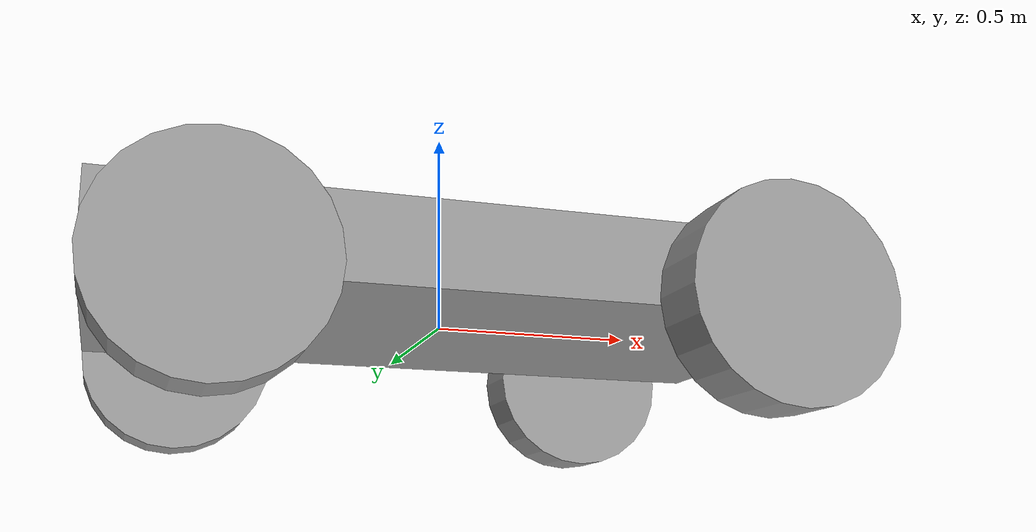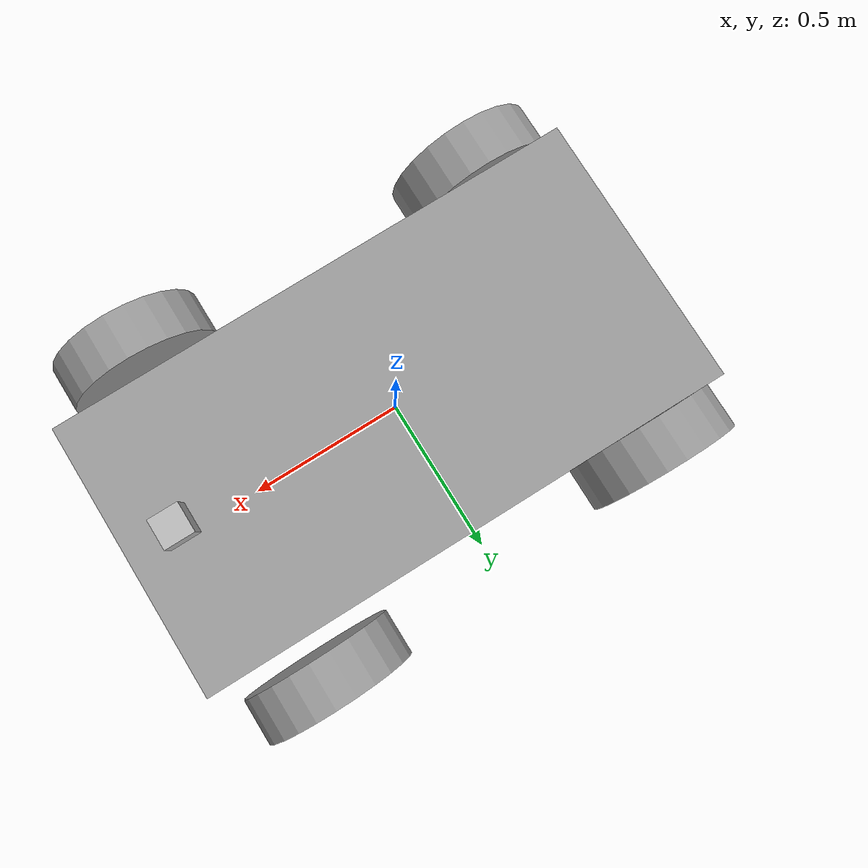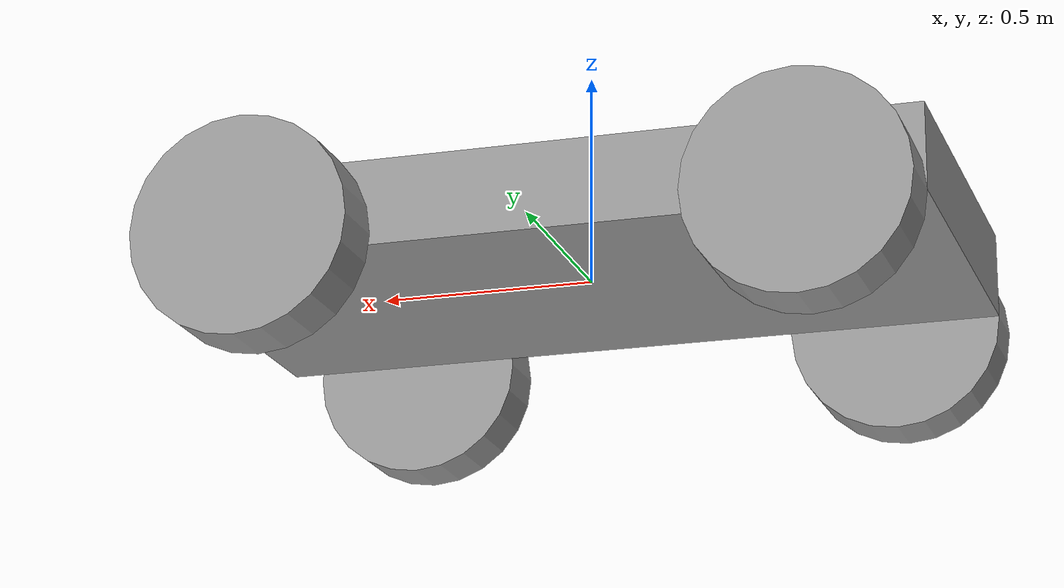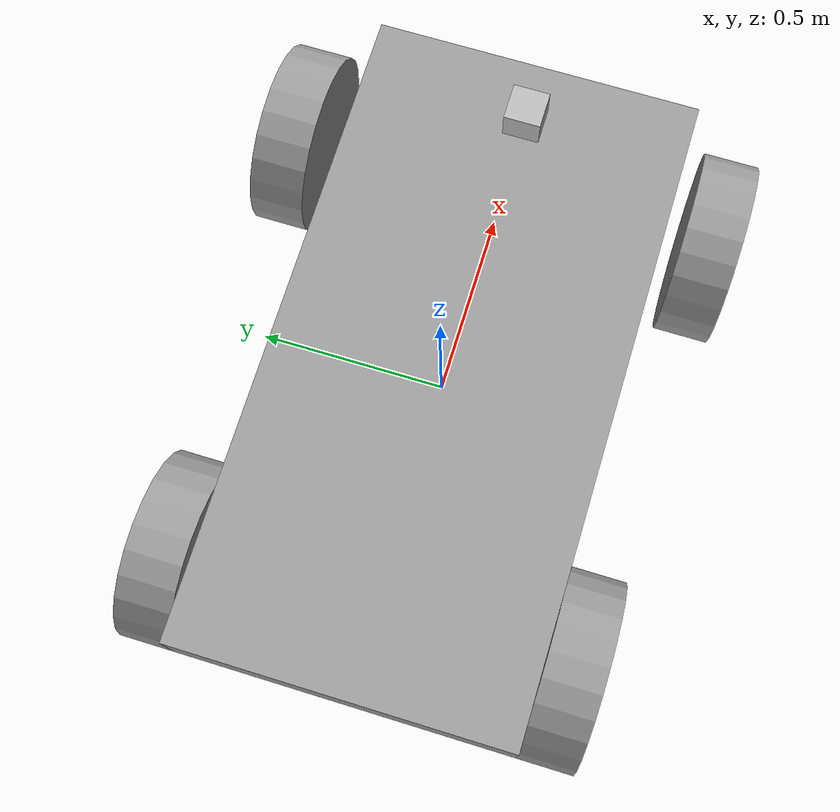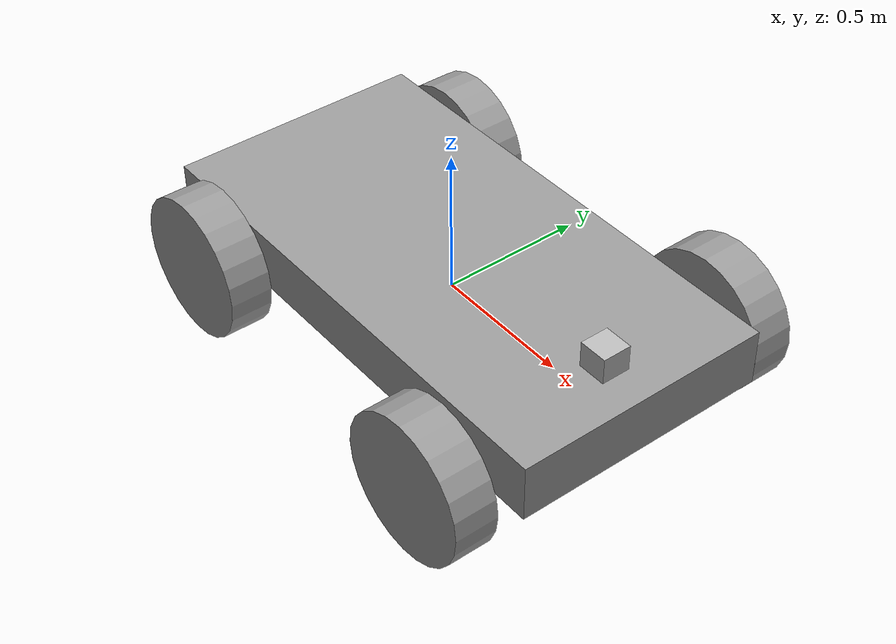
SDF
<?xml version='1.0'?>
<sdf version='1.6'>
  <model name='simple_car'>
    <link name='link_0'>
      <inertial>
        <mass>0.316657</mass>
        <inertia>
          <ixx>0.0225049</ixx>
          <ixy>0</ixy>
          <ixz>0</ixz>
          <iyy>0.0832817</iyy>
          <iyz>0</iyz>
          <izz>0.103699</izz>
        </inertia>
        <pose frame=''>0 0 0 0 -0 0</pose>
      </inertial>
      <pose frame=''>0.02 -0.003 0.08 0 -0 0</pose>
      <gravity>1</gravity>
      <self_collide>0</self_collide>
      <kinematic>0</kinematic>
      <enable_wind>0</enable_wind>
      <visual name='visual'>
        <pose frame=''>0 0 0 0 -0 0</pose>
        <geometry>
          <box>
            <size>1.76538 0.901871 0.198877</size>
          </box>
        </geometry>
        <material>
          <lighting>1</lighting>
          <script>
            <uri>file://media/materials/scripts/gazebo.material</uri>
            <name>Gazebo/Grey</name>
          </script>
          <shader type='vertex'>
            <normal_map>__default__</normal_map>
          </shader>
          <ambient>0.3 0.3 0.3 1</ambient>
          <diffuse>0.7 0.7 0.7 1</diffuse>
          <specular>0.01 0.01 0.01 1</specular>
          <emissive>0 0 0 1</emissive>
        </material>
        <transparency>0</transparency>
        <cast_shadows>1</cast_shadows>
      </visual>
      <collision name='collision'>
        <laser_retro>0</laser_retro>
        <max_contacts>10</max_contacts>
        <pose frame=''>0 0 0 0 -0 0</pose>
        <geometry>
          <box>
            <size>1.76538 0.901871 0.198877</size>
          </box>
        </geometry>
        <surface>
          <friction>
            <ode>
              <mu>1</mu>
              <mu2>1</mu2>
              <fdir1>0 0 0</fdir1>
              <slip1>0</slip1>
              <slip2>0</slip2>
            </ode>
            <torsional>
              <coefficient>1</coefficient>
              <patch_radius>0</patch_radius>
              <surface_radius>0</surface_radius>
              <use_patch_radius>1</use_patch_radius>
              <ode>
                <slip>0</slip>
              </ode>
            </torsional>
          </friction>
          <bounce>
            <restitution_coefficient>0</restitution_coefficient>
            <threshold>1e+06</threshold>
          </bounce>
          <contact>
            <collide_without_contact>0</collide_without_contact>
            <collide_without_contact_bitmask>1</collide_without_contact_bitmask>
            <collide_bitmask>1</collide_bitmask>
            <ode>
              <soft_cfm>0</soft_cfm>
              <soft_erp>0.2</soft_erp>
              <kp>1e+13</kp>
              <kd>1</kd>
              <max_vel>0.01</max_vel>
              <min_depth>0</min_depth>
            </ode>
            <bullet>
              <split_impulse>1</split_impulse>
              <split_impulse_penetration_threshold>-0.01</split_impulse_penetration_threshold>
              <soft_cfm>0</soft_cfm>
              <soft_erp>0.2</soft_erp>
              <kp>1e+13</kp>
              <kd>1</kd>
            </bullet>
          </contact>
        </surface>
      </collision>
    </link>
    <link name='link_1'>
      <inertial>
        <mass>1</mass>
        <inertia>
          <ixx>0.145833</ixx>
          <ixy>0</ixy>
          <ixz>0</ixz>
          <iyy>0.145833</iyy>
          <iyz>0</iyz>
          <izz>0.125</izz>
        </inertia>
        <pose frame=''>1.44263 1.05441 0.500047 1.5707 -0 0</pose>
      </inertial>
      <pose frame=''>0.602689 0.587964 -0.02 1.5707 -0 0</pose>
      <gravity>1</gravity>
      <self_collide>0</self_collide>
      <kinematic>0</kinematic>
      <enable_wind>0</enable_wind>
      <visual name='visual'>
        <pose frame=''>0 0 0 0 -0 0</pose>
        <geometry>
          <cylinder>
            <radius>0.25</radius>
            <length>0.15</length>
          </cylinder>
        </geometry>
        <material>
          <lighting>1</lighting>
          <script>
            <uri>file://media/materials/scripts/gazebo.material</uri>
            <name>Gazebo/Grey</name>
          </script>
          <shader type='vertex'>
            <normal_map>__default__</normal_map>
          </shader>
          <ambient>0.3 0.3 0.3 1</ambient>
          <diffuse>0.7 0.7 0.7 1</diffuse>
          <specular>0.01 0.01 0.01 1</specular>
          <emissive>0 0 0 1</emissive>
        </material>
        <transparency>0</transparency>
        <cast_shadows>1</cast_shadows>
      </visual>
      <collision name='collision'>
        <laser_retro>0</laser_retro>
        <max_contacts>10</max_contacts>
        <pose frame=''>0 0 0 0 -0 0</pose>
        <geometry>
          <cylinder>
            <radius>0.25</radius>
            <length>0.15</length>
          </cylinder>
        </geometry>
        <surface>
          <friction>
            <ode>
              <mu>1</mu>
              <mu2>1</mu2>
              <fdir1>0 0 0</fdir1>
              <slip1>0</slip1>
              <slip2>0</slip2>
            </ode>
            <torsional>
              <coefficient>1</coefficient>
              <patch_radius>0</patch_radius>
              <surface_radius>0</surface_radius>
              <use_patch_radius>1</use_patch_radius>
              <ode>
                <slip>0</slip>
              </ode>
            </torsional>
          </friction>
          <bounce>
            <restitution_coefficient>0</restitution_coefficient>
            <threshold>1e+06</threshold>
          </bounce>
          <contact>
            <collide_without_contact>0</collide_without_contact>
            <collide_without_contact_bitmask>1</collide_without_contact_bitmask>
            <collide_bitmask>1</collide_bitmask>
            <ode>
              <soft_cfm>0</soft_cfm>
              <soft_erp>0.2</soft_erp>
              <kp>1e+13</kp>
              <kd>1</kd>
              <max_vel>0.01</max_vel>
              <min_depth>0</min_depth>
            </ode>
            <bullet>
              <split_impulse>1</split_impulse>
              <split_impulse_penetration_threshold>-0.01</split_impulse_penetration_threshold>
              <soft_cfm>0</soft_cfm>
              <soft_erp>0.2</soft_erp>
              <kp>1e+13</kp>
              <kd>1</kd>
            </bullet>
          </contact>
        </surface>
      </collision>
    </link>
    <link name='link_1_clone'>
      <inertial>
        <mass>1</mass>
        <inertia>
          <ixx>0.145833</ixx>
          <ixy>0</ixy>
          <ixz>0</ixz>
          <iyy>0.145833</iyy>
          <iyz>0</iyz>
          <izz>0.125</izz>
        </inertia>
        <pose frame=''>1.44263 1.05441 0.500047 1.5707 -0 0</pose>
      </inertial>
      <pose frame=''>0.602689 -0.578964 -0.02 1.5707 -0 0</pose>
      <gravity>1</gravity>
      <self_collide>0</self_collide>
      <kinematic>0</kinematic>
      <enable_wind>0</enable_wind>
      <visual name='visual'>
        <pose frame=''>0 0 0 0 -0 0</pose>
        <geometry>
          <cylinder>
            <radius>0.25</radius>
            <length>0.15</length>
          </cylinder>
        </geometry>
        <material>
          <lighting>1</lighting>
          <script>
            <uri>file://media/materials/scripts/gazebo.material</uri>
            <name>Gazebo/Grey</name>
          </script>
          <shader type='vertex'>
            <normal_map>__default__</normal_map>
          </shader>
          <ambient>0.3 0.3 0.3 1</ambient>
          <diffuse>0.7 0.7 0.7 1</diffuse>
          <specular>0.01 0.01 0.01 1</specular>
          <emissive>0 0 0 1</emissive>
        </material>
        <transparency>0</transparency>
        <cast_shadows>1</cast_shadows>
      </visual>
      <collision name='collision'>
        <laser_retro>0</laser_retro>
        <max_contacts>10</max_contacts>
        <pose frame=''>0 0 0 0 -0 0</pose>
        <geometry>
          <cylinder>
            <radius>0.25</radius>
            <length>0.15</length>
          </cylinder>
        </geometry>
        <surface>
          <friction>
            <ode>
              <mu>1</mu>
              <mu2>1</mu2>
              <fdir1>0 0 0</fdir1>
              <slip1>0</slip1>
              <slip2>0</slip2>
            </ode>
            <torsional>
              <coefficient>1</coefficient>
              <patch_radius>0</patch_radius>
              <surface_radius>0</surface_radius>
              <use_patch_radius>1</use_patch_radius>
              <ode>
                <slip>0</slip>
              </ode>
            </torsional>
          </friction>
          <bounce>
            <restitution_coefficient>0</restitution_coefficient>
            <threshold>1e+06</threshold>
          </bounce>
          <contact>
            <collide_without_contact>0</collide_without_contact>
            <collide_without_contact_bitmask>1</collide_without_contact_bitmask>
            <collide_bitmask>1</collide_bitmask>
            <ode>
              <soft_cfm>0</soft_cfm>
              <soft_erp>0.2</soft_erp>
              <kp>1e+13</kp>
              <kd>1</kd>
              <max_vel>0.01</max_vel>
              <min_depth>0</min_depth>
            </ode>
            <bullet>
              <split_impulse>1</split_impulse>
              <split_impulse_penetration_threshold>-0.01</split_impulse_penetration_threshold>
              <soft_cfm>0</soft_cfm>
              <soft_erp>0.2</soft_erp>
              <kp>1e+13</kp>
              <kd>1</kd>
            </bullet>
          </contact>
        </surface>
      </collision>
    </link>
    <link name='link_1_clone_0'>
      <inertial>
        <mass>1</mass>
        <inertia>
          <ixx>0.145833</ixx>
          <ixy>0</ixy>
          <ixz>0</ixz>
          <iyy>0.145833</iyy>
          <iyz>0</iyz>
          <izz>0.125</izz>
        </inertia>
        <pose frame=''>1.44263 1.05441 0.500047 1.5707 -0 0</pose>
      </inertial>
      <pose frame=''>-0.612689 -0.528959 -0.02 1.5707 -0 0</pose>
      <gravity>1</gravity>
      <self_collide>0</self_collide>
      <kinematic>0</kinematic>
      <enable_wind>0</enable_wind>
      <visual name='visual'>
        <pose frame=''>0 0 0 0 -0 0</pose>
        <geometry>
          <cylinder>
            <radius>0.25</radius>
            <length>0.15</length>
          </cylinder>
        </geometry>
        <material>
          <lighting>1</lighting>
          <script>
            <uri>file://media/materials/scripts/gazebo.material</uri>
            <name>Gazebo/Grey</name>
          </script>
          <shader type='vertex'>
            <normal_map>__default__</normal_map>
          </shader>
          <ambient>0.3 0.3 0.3 1</ambient>
          <diffuse>0.7 0.7 0.7 1</diffuse>
          <specular>0.01 0.01 0.01 1</specular>
          <emissive>0 0 0 1</emissive>
        </material>
        <transparency>0</transparency>
        <cast_shadows>1</cast_shadows>
      </visual>
      <collision name='collision'>
        <laser_retro>0</laser_retro>
        <max_contacts>10</max_contacts>
        <pose frame=''>0 0 0 0 -0 0</pose>
        <geometry>
          <cylinder>
            <radius>0.25</radius>
            <length>0.15</length>
          </cylinder>
        </geometry>
        <surface>
          <friction>
            <ode>
              <mu>1</mu>
              <mu2>1</mu2>
              <fdir1>0 0 0</fdir1>
              <slip1>0</slip1>
              <slip2>0</slip2>
            </ode>
            <torsional>
              <coefficient>1</coefficient>
              <patch_radius>0</patch_radius>
              <surface_radius>0</surface_radius>
              <use_patch_radius>1</use_patch_radius>
              <ode>
                <slip>0</slip>
              </ode>
            </torsional>
          </friction>
          <bounce>
            <restitution_coefficient>0</restitution_coefficient>
            <threshold>1e+06</threshold>
          </bounce>
          <contact>
            <collide_without_contact>0</collide_without_contact>
            <collide_without_contact_bitmask>1</collide_without_contact_bitmask>
            <collide_bitmask>1</collide_bitmask>
            <ode>
              <soft_cfm>0</soft_cfm>
              <soft_erp>0.2</soft_erp>
              <kp>1e+13</kp>
              <kd>1</kd>
              <max_vel>0.01</max_vel>
              <min_depth>0</min_depth>
            </ode>
            <bullet>
              <split_impulse>1</split_impulse>
              <split_impulse_penetration_threshold>-0.01</split_impulse_penetration_threshold>
              <soft_cfm>0</soft_cfm>
              <soft_erp>0.2</soft_erp>
              <kp>1e+13</kp>
              <kd>1</kd>
            </bullet>
          </contact>
        </surface>
      </collision>
    </link>
    <link name='link_1_clone_1'>
      <inertial>
        <mass>1</mass>
        <inertia>
          <ixx>0.145833</ixx>
          <ixy>0</ixy>
          <ixz>0</ixz>
          <iyy>0.145833</iyy>
          <iyz>0</iyz>
          <izz>0.125</izz>
        </inertia>
        <pose frame=''>1.44263 1.05441 0.500047 1.5707 -0 0</pose>
      </inertial>
      <pose frame=''>-0.612689 0.522959 -0.02 1.5707 -0 0</pose>
      <gravity>1</gravity>
      <self_collide>0</self_collide>
      <kinematic>0</kinematic>
      <enable_wind>0</enable_wind>
      <visual name='visual'>
        <pose frame=''>0 0 0 0 -0 0</pose>
        <geometry>
          <cylinder>
            <radius>0.25</radius>
            <length>0.15</length>
          </cylinder>
        </geometry>
        <material>
          <lighting>1</lighting>
          <script>
            <uri>file://media/materials/scripts/gazebo.material</uri>
            <name>Gazebo/Grey</name>
          </script>
          <shader type='vertex'>
            <normal_map>__default__</normal_map>
          </shader>
          <ambient>0.3 0.3 0.3 1</ambient>
          <diffuse>0.7 0.7 0.7 1</diffuse>
          <specular>0.01 0.01 0.01 1</specular>
          <emissive>0 0 0 1</emissive>
        </material>
        <transparency>0</transparency>
        <cast_shadows>1</cast_shadows>
      </visual>
      <collision name='collision'>
        <laser_retro>0</laser_retro>
        <max_contacts>10</max_contacts>
        <pose frame=''>0 0 0 0 -0 0</pose>
        <geometry>
          <cylinder>
            <radius>0.25</radius>
            <length>0.15</length>
          </cylinder>
        </geometry>
        <surface>
          <friction>
            <ode>
              <mu>1</mu>
              <mu2>1</mu2>
              <fdir1>0 0 0</fdir1>
              <slip1>0</slip1>
              <slip2>0</slip2>
            </ode>
            <torsional>
              <coefficient>1</coefficient>
              <patch_radius>0</patch_radius>
              <surface_radius>0</surface_radius>
              <use_patch_radius>1</use_patch_radius>
              <ode>
                <slip>0</slip>
              </ode>
            </torsional>
          </friction>
          <bounce>
            <restitution_coefficient>0</restitution_coefficient>
            <threshold>1e+06</threshold>
          </bounce>
          <contact>
            <collide_without_contact>0</collide_without_contact>
            <collide_without_contact_bitmask>1</collide_without_contact_bitmask>
            <collide_bitmask>1</collide_bitmask>
            <ode>
              <soft_cfm>0</soft_cfm>
              <soft_erp>0.2</soft_erp>
              <kp>1e+13</kp>
              <kd>1</kd>
              <max_vel>0.01</max_vel>
              <min_depth>0</min_depth>
            </ode>
            <bullet>
              <split_impulse>1</split_impulse>
              <split_impulse_penetration_threshold>-0.01</split_impulse_penetration_threshold>
              <soft_cfm>0</soft_cfm>
              <soft_erp>0.2</soft_erp>
              <kp>1e+13</kp>
              <kd>1</kd>
            </bullet>
          </contact>
        </surface>
      </collision>
    </link>
    <model name='depth_camera'>
      <link name='link'>
        <pose frame=''>0 0 0.05 0 -0 0</pose>
        <inertial>
          <mass>0.1</mass>
          <inertia>
            <ixx>0.000166667</ixx>
            <iyy>0.000166667</iyy>
            <izz>0.000166667</izz>
            <ixy>0</ixy>
            <ixz>0</ixz>
            <iyz>0</iyz>
          </inertia>
        </inertial>
        <collision name='collision'>
          <geometry>
            <box>
              <size>0.1 0.1 0.1</size>
            </box>
          </geometry>
          <max_contacts>10</max_contacts>
          <surface>
            <contact>
              <ode/>
            </contact>
            <bounce/>
            <friction>
              <torsional>
                <ode/>
              </torsional>
              <ode/>
            </friction>
          </surface>
        </collision>
        <visual name='visual'>
          <geometry>
            <box>
              <size>0.1 0.1 0.1</size>
            </box>
          </geometry>
        </visual>
        <sensor name='camera' type='depth'>
          <camera name='__default__'>
            <horizontal_fov>1.047</horizontal_fov>
            <image>
              <width>320</width>
              <height>240</height>
            </image>
            <clip>
              <near>0.1</near>
              <far>100</far>
            </clip>
          </camera>
          <always_on>1</always_on>
          <update_rate>30</update_rate>
          <visualize>1</visualize>
        </sensor>
        <self_collide>0</self_collide>
        <enable_wind>0</enable_wind>
        <kinematic>0</kinematic>
      </link>
      <pose frame=''>0.731086 -0.013581 0.169606 0 -0 0</pose>
    </model>
    <joint name='link_0_JOINT_0_0' type='fixed'>
      <parent>link_0</parent>
      <child>depth_camera::link</child>
      <pose frame=''>0 0 0 0 -0 0</pose>
      <physics>
        <ode>
          <limit>
            <cfm>0</cfm>
            <erp>0.2</erp>
          </limit>
          <suspension>
            <cfm>0</cfm>
            <erp>0.2</erp>
          </suspension>
        </ode>
      </physics>
    </joint>
    <joint name='link_0_JOINT_0' type='revolute'>
      <parent>link_0</parent>
      <child>link_1</child>
      <pose frame=''>0 0 0 0 -0 0</pose>
      <axis>
        <xyz>0 0 1</xyz>
        <use_parent_model_frame>0</use_parent_model_frame>
        <limit>
          <lower>-1.79769e+308</lower>
          <upper>1.79769e+308</upper>
          <effort>-1</effort>
          <velocity>-1</velocity>
        </limit>
        <dynamics>
          <spring_reference>0</spring_reference>
          <spring_stiffness>0</spring_stiffness>
          <damping>0</damping>
          <friction>0</friction>
        </dynamics>
      </axis>
      <physics>
        <ode>
          <limit>
            <cfm>0</cfm>
            <erp>0.2</erp>
          </limit>
          <suspension>
            <cfm>0</cfm>
            <erp>0.2</erp>
          </suspension>
        </ode>
      </physics>
    </joint>
    <joint name='link_0_JOINT_1' type='revolute'>
      <parent>link_0</parent>
      <child>link_1_clone</child>
      <pose frame=''>0 0 0 0 -0 0</pose>
      <axis>
        <xyz>0 0 1</xyz>
        <use_parent_model_frame>0</use_parent_model_frame>
        <limit>
          <lower>-1.79769e+308</lower>
          <upper>1.79769e+308</upper>
          <effort>-1</effort>
          <velocity>-1</velocity>
        </limit>
        <dynamics>
          <spring_reference>0</spring_reference>
          <spring_stiffness>0</spring_stiffness>
          <damping>0</damping>
          <friction>0</friction>
        </dynamics>
      </axis>
      <physics>
        <ode>
          <limit>
            <cfm>0</cfm>
            <erp>0.2</erp>
          </limit>
          <suspension>
            <cfm>0</cfm>
            <erp>0.2</erp>
          </suspension>
        </ode>
      </physics>
    </joint>
    <joint name='link_0_JOINT_2' type='revolute'>
      <parent>link_0</parent>
      <child>link_1_clone_0</child>
      <pose frame=''>0 0 0 0 -0 0</pose>
      <axis>
        <xyz>0 0 1</xyz>
        <use_parent_model_frame>0</use_parent_model_frame>
        <limit>
          <lower>-1.79769e+308</lower>
          <upper>1.79769e+308</upper>
          <effort>-1</effort>
          <velocity>-1</velocity>
        </limit>
        <dynamics>
          <spring_reference>0</spring_reference>
          <spring_stiffness>0</spring_stiffness>
          <damping>0</damping>
          <friction>0</friction>
        </dynamics>
      </axis>
      <physics>
        <ode>
          <limit>
            <cfm>0</cfm>
            <erp>0.2</erp>
          </limit>
          <suspension>
            <cfm>0</cfm>
            <erp>0.2</erp>
          </suspension>
        </ode>
      </physics>
    </joint>
    <joint name='link_0_JOINT_3' type='revolute'>
      <parent>link_0</parent>
      <child>link_1_clone_1</child>
      <pose frame=''>0 0 0 0 -0 0</pose>
      <axis>
        <xyz>0 0 1</xyz>
        <use_parent_model_frame>0</use_parent_model_frame>
        <limit>
          <lower>-1.79769e+308</lower>
          <upper>1.79769e+308</upper>
          <effort>-1</effort>
          <velocity>-1</velocity>
        </limit>
        <dynamics>
          <spring_reference>0</spring_reference>
          <spring_stiffness>0</spring_stiffness>
          <damping>0</damping>
          <friction>0</friction>
        </dynamics>
      </axis>
      <physics>
        <ode>
          <limit>
            <cfm>0</cfm>
            <erp>0.2</erp>
          </limit>
          <suspension>
            <cfm>0</cfm>
            <erp>0.2</erp>
          </suspension>
        </ode>
      </physics>
    </joint>
    <static>0</static>
    <allow_auto_disable>1</allow_auto_disable>
    <plugin name='follower' filename='libFollowerPlugin.so'/>
  </model>
</sdf>
